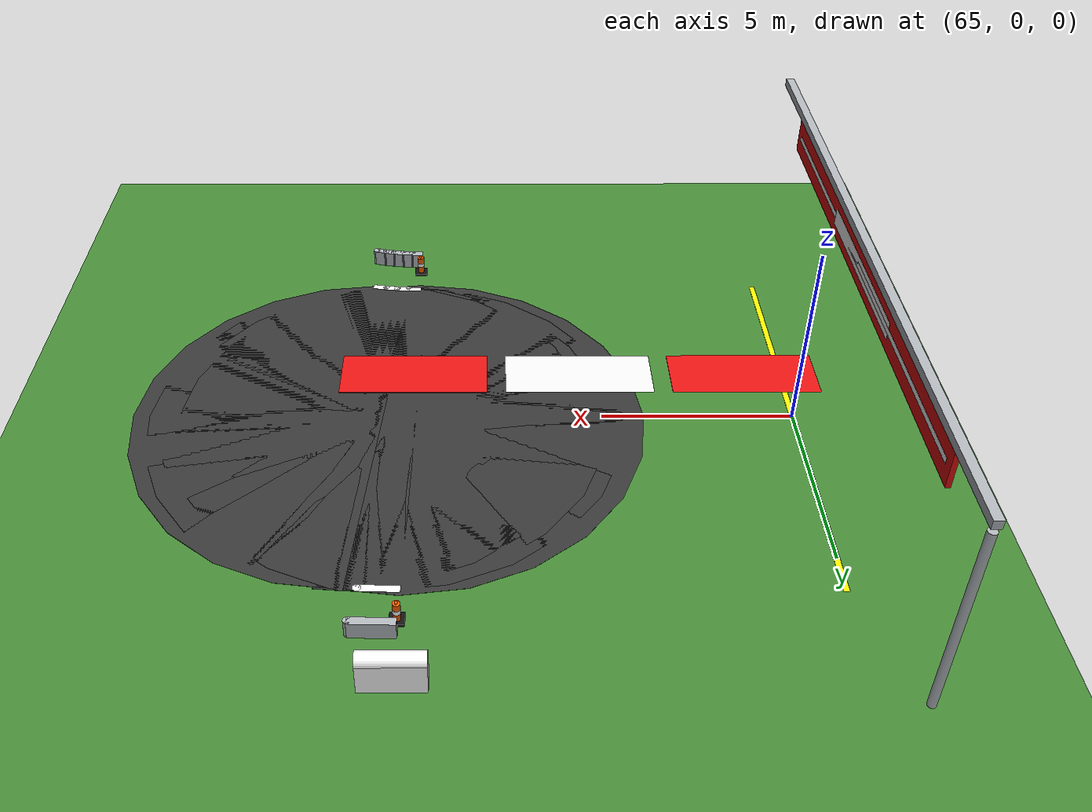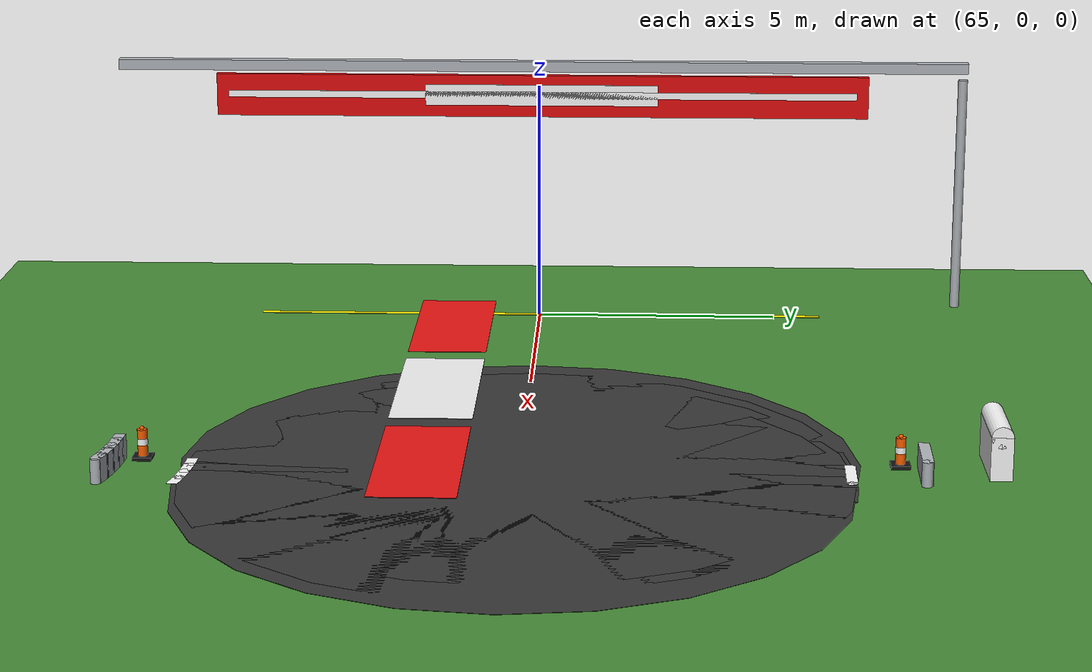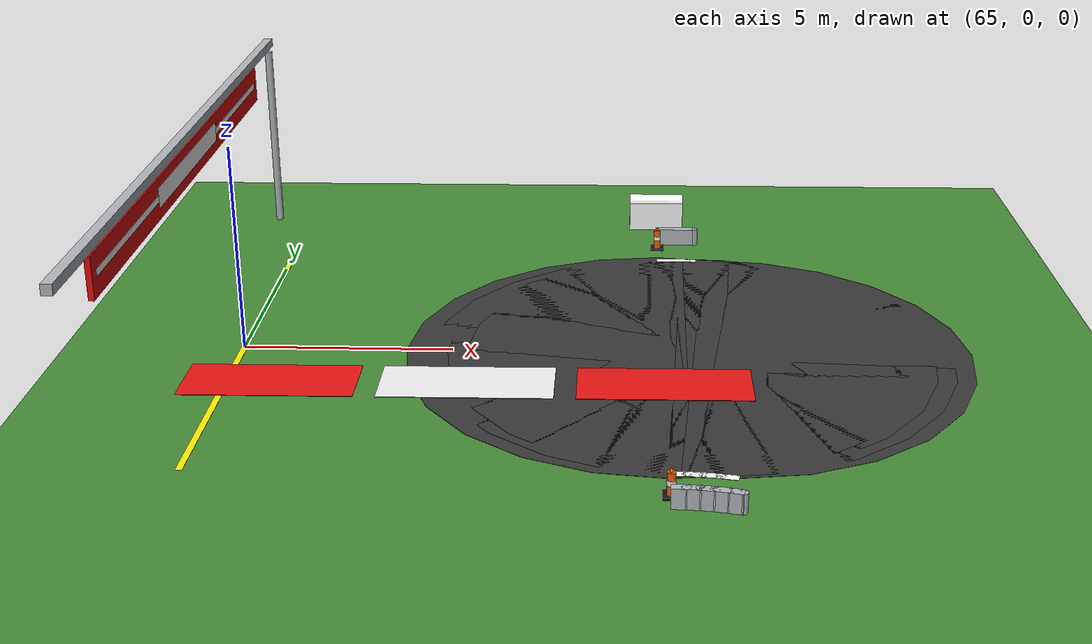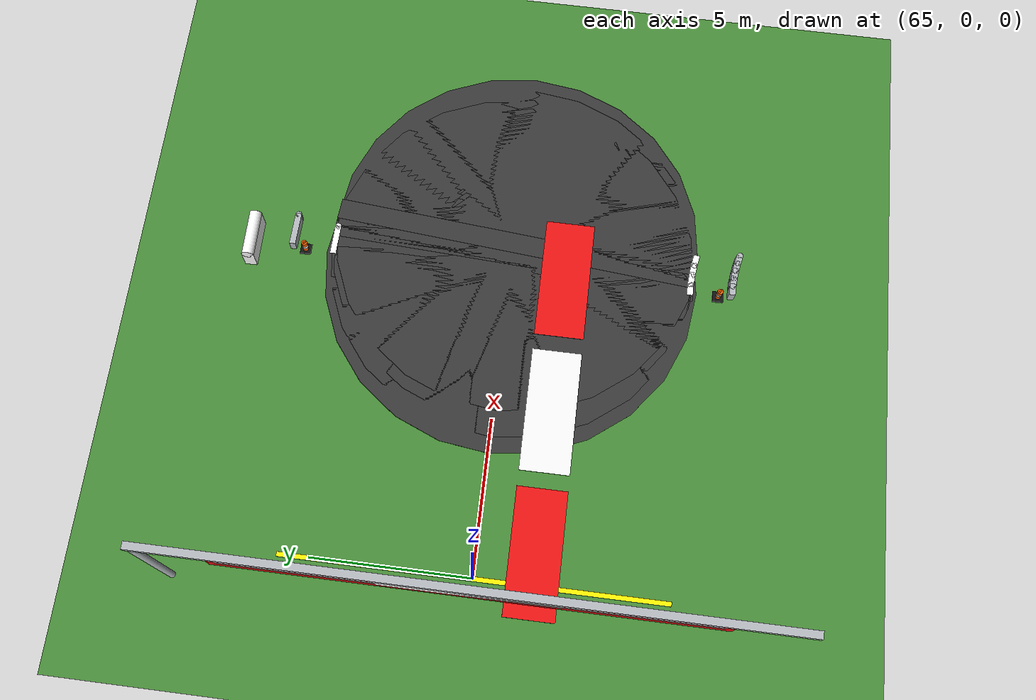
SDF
<sdf version="1.6">
 <world name="sem_silesia_ring_2026">
  <model name="ground_plane">
   <static>true</static>
   <link name="link">
    <collision name="collision">
     <geometry><plane><normal>0 0 1</normal><size>600 600</size></plane></geometry>
     <surface><friction><ode><mu>0.6</mu><mu2>0.6</mu2></ode></friction></surface>
    </collision>
    <visual name="visual">
     <geometry><plane><normal>0 0 1</normal><size>600 600</size></plane></geometry>
     <material><ambient>0.28 0.55 0.22 1</ambient><diffuse>0.28 0.55 0.22 1</diffuse></material>
    </visual>
   </link>
  </model>
  <model name="road_R_jnt87">
   <static>true</static>
   <pose>76.3066 -0.0685 0.0030 0 0 0</pose>
   <link name="link">
    <visual name="v">
     <geometry><cylinder><radius>6.0000</radius><length>0.0060</length></cylinder></geometry>
     <material><ambient>0.22 0.22 0.22 1</ambient><diffuse>0.22 0.22 0.22 1</diffuse></material>
    </visual>
    <collision name="c">
     <geometry><cylinder><radius>6.0000</radius><length>0.0060</length></cylinder></geometry>
     <surface><friction><ode><mu>0.9</mu><mu2>0.9</mu2></ode></friction></surface>
    </collision>
   </link>
  </model>
  <model name="road_R_s87">
   <static>true</static>
   <pose>76.0894 -0.0476 0.0030 0 0 3.0543</pose>
   <link name="link">
    <visual name="v">
     <geometry><box><size>0.6957 12.0000 0.0060</size></box></geometry>
     <material><ambient>0.22 0.22 0.22 1</ambient><diffuse>0.22 0.22 0.22 1</diffuse></material>
    </visual>
    <collision name="c">
     <geometry><box><size>0.6957 12.0000 0.0060</size></box></geometry>
     <surface><friction><ode><mu>0.9</mu><mu2>0.9</mu2></ode></friction></surface>
    </collision>
   </link>
  </model>
  <model name="road_R_jnt88">
   <static>true</static>
   <pose>75.8720 -0.0304 0.0030 0 0 0</pose>
   <link name="link">
    <visual name="v">
     <geometry><cylinder><radius>6.0000</radius><length>0.0060</length></cylinder></geometry>
     <material><ambient>0.22 0.22 0.22 1</ambient><diffuse>0.22 0.22 0.22 1</diffuse></material>
    </visual>
    <collision name="c">
     <geometry><cylinder><radius>6.0000</radius><length>0.0060</length></cylinder></geometry>
     <surface><friction><ode><mu>0.9</mu><mu2>0.9</mu2></ode></friction></surface>
    </collision>
   </link>
  </model>
  <model name="road_R_s88">
   <static>true</static>
   <pose>75.6542 -0.0171 0.0030 0 0 3.0892</pose>
   <link name="link">
    <visual name="v">
     <geometry><box><size>0.6957 12.0000 0.0060</size></box></geometry>
     <material><ambient>0.22 0.22 0.22 1</ambient><diffuse>0.22 0.22 0.22 1</diffuse></material>
    </visual>
    <collision name="c">
     <geometry><box><size>0.6957 12.0000 0.0060</size></box></geometry>
     <surface><friction><ode><mu>0.9</mu><mu2>0.9</mu2></ode></friction></surface>
    </collision>
   </link>
  </model>
  <model name="road_R_jnt89">
   <static>true</static>
   <pose>75.4362 -0.0076 0.0030 0 0 0</pose>
   <link name="link">
    <visual name="v">
     <geometry><cylinder><radius>6.0000</radius><length>0.0060</length></cylinder></geometry>
     <material><ambient>0.22 0.22 0.22 1</ambient><diffuse>0.22 0.22 0.22 1</diffuse></material>
    </visual>
    <collision name="c">
     <geometry><cylinder><radius>6.0000</radius><length>0.0060</length></cylinder></geometry>
     <surface><friction><ode><mu>0.9</mu><mu2>0.9</mu2></ode></friction></surface>
    </collision>
   </link>
  </model>
  <model name="road_R_s89">
   <static>true</static>
   <pose>75.2182 -0.0019 0.0030 0 0 3.1241</pose>
   <link name="link">
    <visual name="v">
     <geometry><box><size>0.6957 12.0000 0.0060</size></box></geometry>
     <material><ambient>0.22 0.22 0.22 1</ambient><diffuse>0.22 0.22 0.22 1</diffuse></material>
    </visual>
    <collision name="c">
     <geometry><box><size>0.6957 12.0000 0.0060</size></box></geometry>
     <surface><friction><ode><mu>0.9</mu><mu2>0.9</mu2></ode></friction></surface>
    </collision>
   </link>
  </model>
  <model name="jnt_tr">
   <static>true</static>
   <pose>75.0000 0.0000 0.0030 0 0 0</pose>
   <link name="link">
    <visual name="v">
     <geometry><cylinder><radius>6.1000</radius><length>0.0060</length></cylinder></geometry>
     <material><ambient>0.22 0.22 0.22 1</ambient><diffuse>0.22 0.22 0.22 1</diffuse></material>
    </visual>
    <collision name="c">
     <geometry><cylinder><radius>6.1000</radius><length>0.0060</length></cylinder></geometry>
     <surface><friction><ode><mu>0.9</mu><mu2>0.9</mu2></ode></friction></surface>
    </collision>
   </link>
  </model>
  <model name="wl_Ro_jnt59">
   <static>true</static>
   <pose>75.9630 5.8748 0.0050 0 0 0</pose>
   <link name="link">
    <visual name="v">
     <geometry><cylinder><radius>0.1000</radius><length>0.0040</length></cylinder></geometry>
     <material><ambient>1 1 1 1</ambient><diffuse>1 1 1 1</diffuse></material>
    </visual>
    <collision name="c">
     <geometry><cylinder><radius>0.1000</radius><length>0.0040</length></cylinder></geometry>
     <surface><friction><ode><mu>0.9</mu><mu2>0.9</mu2></ode></friction></surface>
    </collision>
   </link>
  </model>
  <model name="wl_Ro_s59">
   <static>true</static>
   <pose>75.4817 5.8937 0.0050 0 0 3.1154</pose>
   <link name="link">
    <visual name="v">
     <geometry><box><size>1.0185 0.2000 0.0040</size></box></geometry>
     <material><ambient>1 1 1 1</ambient><diffuse>1 1 1 1</diffuse></material>
    </visual>
    <collision name="c">
     <geometry><box><size>1.0185 0.2000 0.0040</size></box></geometry>
     <surface><friction><ode><mu>0.9</mu><mu2>0.9</mu2></ode></friction></surface>
    </collision>
   </link>
  </model>
  <model name="wl_Ri_s56">
   <static>true</static>
   <pose>76.2028 -6.0105 0.0050 0 0 2.9583</pose>
   <link name="link">
    <visual name="v">
     <geometry><box><size>0.4008 0.2000 0.0040</size></box></geometry>
     <material><ambient>1 1 1 1</ambient><diffuse>1 1 1 1</diffuse></material>
    </visual>
    <collision name="c">
     <geometry><box><size>0.4008 0.2000 0.0040</size></box></geometry>
     <surface><friction><ode><mu>0.9</mu><mu2>0.9</mu2></ode></friction></surface>
    </collision>
   </link>
  </model>
  <model name="wl_Ri_jnt57">
   <static>true</static>
   <pose>76.0325 -5.9813 0.0050 0 0 0</pose>
   <link name="link">
    <visual name="v">
     <geometry><cylinder><radius>0.1000</radius><length>0.0040</length></cylinder></geometry>
     <material><ambient>1 1 1 1</ambient><diffuse>1 1 1 1</diffuse></material>
    </visual>
    <collision name="c">
     <geometry><cylinder><radius>0.1000</radius><length>0.0040</length></cylinder></geometry>
     <surface><friction><ode><mu>0.9</mu><mu2>0.9</mu2></ode></friction></surface>
    </collision>
   </link>
  </model>
  <model name="wl_Ri_s57">
   <static>true</static>
   <pose>75.8615 -5.9565 0.0050 0 0 3.0107</pose>
   <link name="link">
    <visual name="v">
     <geometry><box><size>0.4008 0.2000 0.0040</size></box></geometry>
     <material><ambient>1 1 1 1</ambient><diffuse>1 1 1 1</diffuse></material>
    </visual>
    <collision name="c">
     <geometry><box><size>0.4008 0.2000 0.0040</size></box></geometry>
     <surface><friction><ode><mu>0.9</mu><mu2>0.9</mu2></ode></friction></surface>
    </collision>
   </link>
  </model>
  <model name="wl_Ri_jnt58">
   <static>true</static>
   <pose>75.6899 -5.9362 0.0050 0 0 0</pose>
   <link name="link">
    <visual name="v">
     <geometry><cylinder><radius>0.1000</radius><length>0.0040</length></cylinder></geometry>
     <material><ambient>1 1 1 1</ambient><diffuse>1 1 1 1</diffuse></material>
    </visual>
    <collision name="c">
     <geometry><cylinder><radius>0.1000</radius><length>0.0040</length></cylinder></geometry>
     <surface><friction><ode><mu>0.9</mu><mu2>0.9</mu2></ode></friction></surface>
    </collision>
   </link>
  </model>
  <model name="wl_Ri_s58">
   <static>true</static>
   <pose>75.5178 -5.9203 0.0050 0 0 3.0631</pose>
   <link name="link">
    <visual name="v">
     <geometry><box><size>0.4008 0.2000 0.0040</size></box></geometry>
     <material><ambient>1 1 1 1</ambient><diffuse>1 1 1 1</diffuse></material>
    </visual>
    <collision name="c">
     <geometry><box><size>0.4008 0.2000 0.0040</size></box></geometry>
     <surface><friction><ode><mu>0.9</mu><mu2>0.9</mu2></ode></friction></surface>
    </collision>
   </link>
  </model>
  <model name="wl_Ri_jnt59">
   <static>true</static>
   <pose>75.3454 -5.9090 0.0050 0 0 0</pose>
   <link name="link">
    <visual name="v">
     <geometry><cylinder><radius>0.1000</radius><length>0.0040</length></cylinder></geometry>
     <material><ambient>1 1 1 1</ambient><diffuse>1 1 1 1</diffuse></material>
    </visual>
    <collision name="c">
     <geometry><cylinder><radius>0.1000</radius><length>0.0040</length></cylinder></geometry>
     <surface><friction><ode><mu>0.9</mu><mu2>0.9</mu2></ode></friction></surface>
    </collision>
   </link>
  </model>
  <model name="wl_Ri_s59">
   <static>true</static>
   <pose>75.1728 -5.9023 0.0050 0 0 3.1154</pose>
   <link name="link">
    <visual name="v">
     <geometry><box><size>0.4008 0.2000 0.0040</size></box></geometry>
     <material><ambient>1 1 1 1</ambient><diffuse>1 1 1 1</diffuse></material>
    </visual>
    <collision name="c">
     <geometry><box><size>0.4008 0.2000 0.0040</size></box></geometry>
     <surface><friction><ode><mu>0.9</mu><mu2>0.9</mu2></ode></friction></surface>
    </collision>
   </link>
  </model>
  <model name="start_line">
   <static>true</static>
   <pose>65.0000 0.0000 0.0070 0 0 0.0000</pose>
   <link name="link">
    <visual name="v">
     <geometry><box><size>0.1500 12.0000 0.0080</size></box></geometry>
     <material><ambient>1 0.95 0.0 1</ambient><diffuse>1 0.95 0.0 1</diffuse></material>
    </visual>
    <collision name="c">
     <geometry><box><size>0.1500 12.0000 0.0080</size></box></geometry>
     <surface><friction><ode><mu>0.9</mu><mu2>0.9</mu2></ode></friction></surface>
    </collision>
   </link>
  </model>
  <model name="kerb_entry_0">
   <static>true</static>
   <pose>75.0000 -1.8000 0.0120 0 0 0.0000</pose>
   <link name="link">
    <visual name="v">
     <geometry><box><size>4.0000 1.6000 0.0120</size></box></geometry>
     <material><ambient>0.92 0.08 0.08 1</ambient><diffuse>0.92 0.08 0.08 1</diffuse></material>
    </visual>
    <collision name="c">
     <pose>0 0 -0.0060 0 0 0</pose>
     <geometry><box><size>4.0000 1.6000 0.0010</size></box></geometry>
     <surface><friction><ode><mu>0.9</mu><mu2>0.9</mu2></ode></friction></surface>
    </collision>
   </link>
  </model>
  <model name="kerb_entry_1">
   <static>true</static>
   <pose>70.5000 -1.8000 0.0120 0 0 0.0000</pose>
   <link name="link">
    <visual name="v">
     <geometry><box><size>4.0000 1.6000 0.0120</size></box></geometry>
     <material><ambient>0.96 0.96 0.96 1</ambient><diffuse>0.96 0.96 0.96 1</diffuse></material>
    </visual>
    <collision name="c">
     <pose>0 0 -0.0060 0 0 0</pose>
     <geometry><box><size>4.0000 1.6000 0.0010</size></box></geometry>
     <surface><friction><ode><mu>0.9</mu><mu2>0.9</mu2></ode></friction></surface>
    </collision>
   </link>
  </model>
  <model name="kerb_entry_2">
   <static>true</static>
   <pose>66.0000 -1.8000 0.0120 0 0 0.0000</pose>
   <link name="link">
    <visual name="v">
     <geometry><box><size>4.0000 1.6000 0.0120</size></box></geometry>
     <material><ambient>0.92 0.08 0.08 1</ambient><diffuse>0.92 0.08 0.08 1</diffuse></material>
    </visual>
    <collision name="c">
     <pose>0 0 -0.0060 0 0 0</pose>
     <geometry><box><size>4.0000 1.6000 0.0010</size></box></geometry>
     <surface><friction><ode><mu>0.9</mu><mu2>0.9</mu2></ode></friction></surface>
    </collision>
   </link>
  </model>
  <model name="arm_Ro_jnt59">
   <static>true</static>
   <pose>76.0310 7.1730 0.2250 0 0 0</pose>
   <link name="link">
    <visual name="v">
     <geometry><cylinder><radius>0.1000</radius><length>0.4500</length></cylinder></geometry>
     <material><ambient>0.70 0.72 0.74 1</ambient><diffuse>0.70 0.72 0.74 1</diffuse></material>
    </visual>
    <collision name="c">
     <geometry><cylinder><radius>0.1000</radius><length>0.4500</length></cylinder></geometry>
     <surface><friction><ode><mu>0.9</mu><mu2>0.9</mu2></ode></friction></surface>
    </collision>
   </link>
  </model>
  <model name="arm_Ro_s59">
   <static>true</static>
   <pose>75.5157 7.1932 0.2250 0 0 3.1154</pose>
   <link name="link">
    <visual name="v">
     <geometry><box><size>1.0866 0.2000 0.4500</size></box></geometry>
     <material><ambient>0.70 0.72 0.74 1</ambient><diffuse>0.70 0.72 0.74 1</diffuse></material>
    </visual>
    <collision name="c">
     <geometry><box><size>1.0866 0.2000 0.4500</size></box></geometry>
     <surface><friction><ode><mu>0.9</mu><mu2>0.9</mu2></ode></friction></surface>
    </collision>
   </link>
  </model>
  <model name="arm_Ri_jnt55">
   <static>true</static>
   <pose>76.3717 -7.3806 0.2250 0 0 0</pose>
   <link name="link">
    <visual name="v">
     <geometry><cylinder><radius>0.1000</radius><length>0.4500</length></cylinder></geometry>
     <material><ambient>0.70 0.72 0.74 1</ambient><diffuse>0.70 0.72 0.74 1</diffuse></material>
    </visual>
    <collision name="c">
     <geometry><cylinder><radius>0.1000</radius><length>0.4500</length></cylinder></geometry>
     <surface><friction><ode><mu>0.9</mu><mu2>0.9</mu2></ode></friction></surface>
    </collision>
   </link>
  </model>
  <model name="arm_Ri_s55">
   <static>true</static>
   <pose>76.2373 -7.3464 0.2250 0 0 2.9060</pose>
   <link name="link">
    <visual name="v">
     <geometry><box><size>0.3327 0.2000 0.4500</size></box></geometry>
     <material><ambient>0.70 0.72 0.74 1</ambient><diffuse>0.70 0.72 0.74 1</diffuse></material>
    </visual>
    <collision name="c">
     <geometry><box><size>0.3327 0.2000 0.4500</size></box></geometry>
     <surface><friction><ode><mu>0.9</mu><mu2>0.9</mu2></ode></friction></surface>
    </collision>
   </link>
  </model>
  <model name="arm_Ri_jnt56">
   <static>true</static>
   <pose>76.1019 -7.3158 0.2250 0 0 0</pose>
   <link name="link">
    <visual name="v">
     <geometry><cylinder><radius>0.1000</radius><length>0.4500</length></cylinder></geometry>
     <material><ambient>0.70 0.72 0.74 1</ambient><diffuse>0.70 0.72 0.74 1</diffuse></material>
    </visual>
    <collision name="c">
     <geometry><cylinder><radius>0.1000</radius><length>0.4500</length></cylinder></geometry>
     <surface><friction><ode><mu>0.9</mu><mu2>0.9</mu2></ode></friction></surface>
    </collision>
   </link>
  </model>
  <model name="arm_Ri_s56">
   <static>true</static>
   <pose>75.9658 -7.2887 0.2250 0 0 2.9583</pose>
   <link name="link">
    <visual name="v">
     <geometry><box><size>0.3327 0.2000 0.4500</size></box></geometry>
     <material><ambient>0.70 0.72 0.74 1</ambient><diffuse>0.70 0.72 0.74 1</diffuse></material>
    </visual>
    <collision name="c">
     <geometry><box><size>0.3327 0.2000 0.4500</size></box></geometry>
     <surface><friction><ode><mu>0.9</mu><mu2>0.9</mu2></ode></friction></surface>
    </collision>
   </link>
  </model>
  <model name="arm_Ri_jnt57">
   <static>true</static>
   <pose>75.8291 -7.2653 0.2250 0 0 0</pose>
   <link name="link">
    <visual name="v">
     <geometry><cylinder><radius>0.1000</radius><length>0.4500</length></cylinder></geometry>
     <material><ambient>0.70 0.72 0.74 1</ambient><diffuse>0.70 0.72 0.74 1</diffuse></material>
    </visual>
    <collision name="c">
     <geometry><cylinder><radius>0.1000</radius><length>0.4500</length></cylinder></geometry>
     <surface><friction><ode><mu>0.9</mu><mu2>0.9</mu2></ode></friction></surface>
    </collision>
   </link>
  </model>
  <model name="arm_Ri_s57">
   <static>true</static>
   <pose>75.6918 -7.2453 0.2250 0 0 3.0107</pose>
   <link name="link">
    <visual name="v">
     <geometry><box><size>0.3327 0.2000 0.4500</size></box></geometry>
     <material><ambient>0.70 0.72 0.74 1</ambient><diffuse>0.70 0.72 0.74 1</diffuse></material>
    </visual>
    <collision name="c">
     <geometry><box><size>0.3327 0.2000 0.4500</size></box></geometry>
     <surface><friction><ode><mu>0.9</mu><mu2>0.9</mu2></ode></friction></surface>
    </collision>
   </link>
  </model>
  <model name="arm_Ri_jnt58">
   <static>true</static>
   <pose>75.5540 -7.2290 0.2250 0 0 0</pose>
   <link name="link">
    <visual name="v">
     <geometry><cylinder><radius>0.1000</radius><length>0.4500</length></cylinder></geometry>
     <material><ambient>0.70 0.72 0.74 1</ambient><diffuse>0.70 0.72 0.74 1</diffuse></material>
    </visual>
    <collision name="c">
     <geometry><cylinder><radius>0.1000</radius><length>0.4500</length></cylinder></geometry>
     <surface><friction><ode><mu>0.9</mu><mu2>0.9</mu2></ode></friction></surface>
    </collision>
   </link>
  </model>
  <model name="arm_Ri_s58">
   <static>true</static>
   <pose>75.4158 -7.2163 0.2250 0 0 3.0631</pose>
   <link name="link">
    <visual name="v">
     <geometry><box><size>0.3327 0.2000 0.4500</size></box></geometry>
     <material><ambient>0.70 0.72 0.74 1</ambient><diffuse>0.70 0.72 0.74 1</diffuse></material>
    </visual>
    <collision name="c">
     <geometry><box><size>0.3327 0.2000 0.4500</size></box></geometry>
     <surface><friction><ode><mu>0.9</mu><mu2>0.9</mu2></ode></friction></surface>
    </collision>
   </link>
  </model>
  <model name="arm_Ri_jnt59">
   <static>true</static>
   <pose>75.2774 -7.2073 0.2250 0 0 0</pose>
   <link name="link">
    <visual name="v">
     <geometry><cylinder><radius>0.1000</radius><length>0.4500</length></cylinder></geometry>
     <material><ambient>0.70 0.72 0.74 1</ambient><diffuse>0.70 0.72 0.74 1</diffuse></material>
    </visual>
    <collision name="c">
     <geometry><cylinder><radius>0.1000</radius><length>0.4500</length></cylinder></geometry>
     <surface><friction><ode><mu>0.9</mu><mu2>0.9</mu2></ode></friction></surface>
    </collision>
   </link>
  </model>
  <model name="arm_Ri_s59">
   <static>true</static>
   <pose>75.1387 -7.2018 0.2250 0 0 3.1154</pose>
   <link name="link">
    <visual name="v">
     <geometry><box><size>0.3327 0.2000 0.4500</size></box></geometry>
     <material><ambient>0.70 0.72 0.74 1</ambient><diffuse>0.70 0.72 0.74 1</diffuse></material>
    </visual>
    <collision name="c">
     <geometry><box><size>0.3327 0.2000 0.4500</size></box></geometry>
     <surface><friction><ode><mu>0.9</mu><mu2>0.9</mu2></ode></friction></surface>
    </collision>
   </link>
  </model>
  <model name="p_bar_R_arc_9">
   <static>true</static>
   <pose>75.0000 8.5000 0.4 0 0 3.1416</pose>
   <link name="link">
    <visual name="v">
     <geometry><box><size>1.5 0.4 0.8</size></box></geometry>
     <material><ambient>1 1 1 1</ambient><diffuse>1 1 1 1</diffuse></material>
    </visual>
    <visual name="top_round">
     <pose>0 0 0.4 0 1.5708 0</pose>
     <geometry><cylinder><radius>0.2</radius><length>1.5</length></cylinder></geometry>
     <material><ambient>1 1 1 1</ambient><diffuse>1 1 1 1</diffuse></material>
    </visual>
    <collision name="c"><geometry><box><size>1.5 0.4 0.8</size></box></geometry></collision>
   </link>
  </model>
  <model name="cn_Ro_8">
   <static>true</static>
   <pose>75.0000 6.8000 0 0 0 0</pose>
   <link name="link">
    <visual name="base">
     <pose>0 0 0.03 0 0 0</pose>
     <geometry><box><size>0.35 0.35 0.06</size></box></geometry>
     <material><ambient>0.08 0.08 0.08 1</ambient><diffuse>0.08 0.08 0.08 1</diffuse></material>
    </visual>
    <visual name="body">
     <pose>0 0 0.30 0 0 0</pose>
     <geometry><cylinder><radius>0.09</radius><length>0.50</length></cylinder></geometry>
     <material><ambient>1.0 0.38 0.0 1</ambient><diffuse>1.0 0.38 0.0 1</diffuse></material>
    </visual>
    <visual name="stripe">
     <pose>0 0 0.32 0 0 0</pose>
     <geometry><cylinder><radius>0.095</radius><length>0.12</length></cylinder></geometry>
     <material><ambient>1 1 1 1</ambient><diffuse>1 1 1 1</diffuse></material>
    </visual>
    <visual name="tip">
     <pose>0 0 0.57 0 0 0</pose>
     <geometry><sphere><radius>0.04</radius></sphere></geometry>
     <material><ambient>1.0 0.38 0.0 1</ambient><diffuse>1.0 0.38 0.0 1</diffuse></material>
    </visual>
    <collision name="c">
     <pose>0 0 0.28 0 0 0</pose>
     <geometry><cylinder><radius>0.09</radius><length>0.56</length></cylinder></geometry>
    </collision>
   </link>
  </model>
  <model name="cn_Ri_8">
   <static>true</static>
   <pose>75.0000 -6.8000 0 0 0 0</pose>
   <link name="link">
    <visual name="base">
     <pose>0 0 0.03 0 0 0</pose>
     <geometry><box><size>0.35 0.35 0.06</size></box></geometry>
     <material><ambient>0.08 0.08 0.08 1</ambient><diffuse>0.08 0.08 0.08 1</diffuse></material>
    </visual>
    <visual name="body">
     <pose>0 0 0.30 0 0 0</pose>
     <geometry><cylinder><radius>0.09</radius><length>0.50</length></cylinder></geometry>
     <material><ambient>1.0 0.38 0.0 1</ambient><diffuse>1.0 0.38 0.0 1</diffuse></material>
    </visual>
    <visual name="stripe">
     <pose>0 0 0.32 0 0 0</pose>
     <geometry><cylinder><radius>0.095</radius><length>0.12</length></cylinder></geometry>
     <material><ambient>1 1 1 1</ambient><diffuse>1 1 1 1</diffuse></material>
    </visual>
    <visual name="tip">
     <pose>0 0 0.57 0 0 0</pose>
     <geometry><sphere><radius>0.04</radius></sphere></geometry>
     <material><ambient>1.0 0.38 0.0 1</ambient><diffuse>1.0 0.38 0.0 1</diffuse></material>
    </visual>
    <collision name="c">
     <pose>0 0 0.28 0 0 0</pose>
     <geometry><cylinder><radius>0.09</radius><length>0.56</length></cylinder></geometry>
    </collision>
   </link>
  </model>
  <model name="gantry_start_pL">
   <static>true</static>
   <pose>64.0000 9.0000 2.5000 0 0 0</pose>
   <link name="link">
    <visual name="v">
     <geometry><cylinder><radius>0.1000</radius><length>5.0000</length></cylinder></geometry>
     <material><ambient>0.70 0.72 0.74 1</ambient><diffuse>0.70 0.72 0.74 1</diffuse></material>
    </visual>
    <collision name="c">
     <geometry><cylinder><radius>0.1000</radius><length>5.0000</length></cylinder></geometry>
     <surface><friction><ode><mu>0.9</mu><mu2>0.9</mu2></ode></friction></surface>
    </collision>
   </link>
  </model>
  <model name="gantry_start_bar">
   <static>true</static>
   <pose>64.0000 0.0000 5.2500 0 0 0.0000</pose>
   <link name="link">
    <visual name="v">
     <geometry><box><size>0.2200 18.2000 0.2200</size></box></geometry>
     <material><ambient>0.70 0.72 0.74 1</ambient><diffuse>0.70 0.72 0.74 1</diffuse></material>
    </visual>
    <collision name="c">
     <geometry><box><size>0.2200 18.2000 0.2200</size></box></geometry>
     <surface><friction><ode><mu>0.9</mu><mu2>0.9</mu2></ode></friction></surface>
    </collision>
   </link>
  </model>
  <model name="gantry_start_banner">
   <static>true</static>
   <pose>64.0000 0.0000 4.6000 0 0 0.0000</pose>
   <link name="link">
    <visual name="v">
     <geometry><box><size>0.1200 14.0000 0.9000</size></box></geometry>
     <material><ambient>0.90 0.05 0.05 1</ambient><diffuse>0.90 0.05 0.05 1</diffuse></material>
    </visual>
    <collision name="c">
     <geometry><box><size>0.1200 14.0000 0.9000</size></box></geometry>
     <surface><friction><ode><mu>0.9</mu><mu2>0.9</mu2></ode></friction></surface>
    </collision>
   </link>
  </model>
  <model name="gantry_start_stripe">
   <static>true</static>
   <pose>64.0000 0.0000 4.6200 0 0 0.0000</pose>
   <link name="link">
    <visual name="v">
     <geometry><box><size>0.1300 13.5000 0.1500</size></box></geometry>
     <material><ambient>1 1 1 1</ambient><diffuse>1 1 1 1</diffuse></material>
    </visual>
    <collision name="c">
     <geometry><box><size>0.1300 13.5000 0.1500</size></box></geometry>
     <surface><friction><ode><mu>0.9</mu><mu2>0.9</mu2></ode></friction></surface>
    </collision>
   </link>
  </model>
  <model name="meta_text">
   <static>true</static>
   <pose>64.0000 0.0000 4.6200 0 0 0.0000</pose>
   <link name="link">
    <visual name="v">
     <geometry><box><size>0.1300 5.0000 0.4500</size></box></geometry>
     <material><ambient>1 1 1 1</ambient><diffuse>1 1 1 1</diffuse></material>
    </visual>
    <collision name="c">
     <geometry><box><size>0.1300 5.0000 0.4500</size></box></geometry>
     <surface><friction><ode><mu>0.9</mu><mu2>0.9</mu2></ode></friction></surface>
    </collision>
   </link>
  </model>
 </world>
</sdf>
